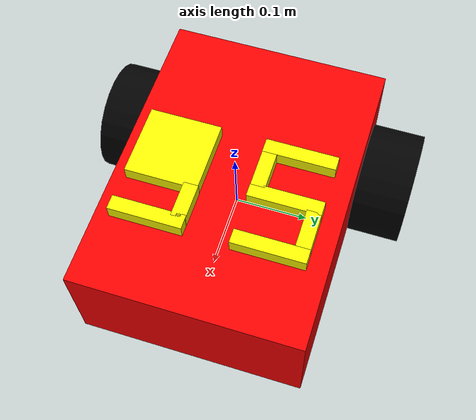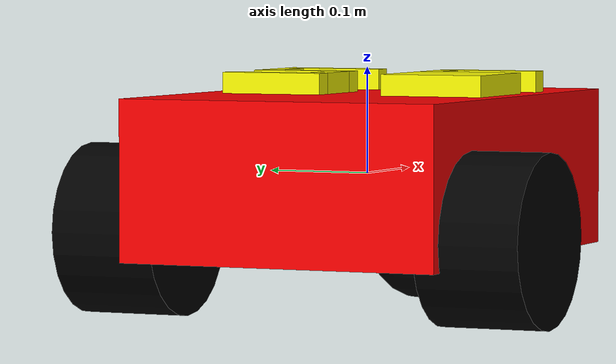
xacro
<?xml version="1.0"?>
<robot name="robot" xmlns:xacro="http://ros.org/wiki/xacro">

  <!-- Define robot constants -->
  <xacro:property name="base_width" value="0.31"/>
  <xacro:property name="base_length" value="0.42"/>
  <xacro:property name="base_height" value="0.15"/>

  <xacro:property name="wheel_radius" value="0.08"/>
  <xacro:property name="wheel_width" value="0.1"/>
  <xacro:property name="wheel_ygap" value="0.025"/>
  <xacro:property name="wheel_zoff" value="0.05"/>
  <xacro:property name="wheel_xoff" value="0.12"/>

  <xacro:property name="caster_xoff" value="0.14"/>

   <!-- Define intertial property macros  -->
  <xacro:macro name="box_inertia" params="m w h d">
    <inertial>
      <origin xyz="0 0 0" rpy="${pi/2} 0 ${pi/2}"/>
      <mass value="${m}"/>
      <inertia ixx="${(m/12) * (h*h + d*d)}" ixy="0.0" ixz="0.0" iyy="${(m/12) * (w*w + d*d)}" iyz="0.0" izz="${(m/12) * (w*w + h*h)}"/>
    </inertial>
  </xacro:macro>

  <xacro:macro name="cylinder_inertia" params="m r h">
    <inertial>
      <origin xyz="0 0 0" rpy="${pi/2} 0 0" />
      <mass value="${m}"/>
      <inertia ixx="${(m/12) * (3*r*r + h*h)}" ixy = "0" ixz = "0" iyy="${(m/12) * (3*r*r + h*h)}" iyz = "0" izz="${(m/2) * (r*r)}"/>
    </inertial>
  </xacro:macro>

  <xacro:macro name="sphere_inertia" params="m r">
    <inertial>
      <mass value="${m}"/>
      <inertia ixx="${(2/5) * m * (r*r)}" ixy="0.0" ixz="0.0" iyy="${(2/5) * m * (r*r)}" iyz="0.0" izz="${(2/5) * m * (r*r)}"/>
    </inertial>
  </xacro:macro>

  <!-- Robot Base -->
  <link name="base_link">
    <visual>
      <geometry>
        <box size="${base_length} ${base_width} ${base_height}"/>
      </geometry>
      <material name="Cyan">
        <color rgba="1.0 0 0 1.0"/>
      </material>
    </visual>

    <collision>
      <geometry>
        <box size="${base_length} ${base_width} ${base_height}"/>
      </geometry>
    </collision>

    <xacro:box_inertia m="15" w="${base_width}" d="${base_length}" h="${base_height}"/>
  </link>

  <!-- Robot Footprint -->
  <link name="base_footprint"/>

  <joint name="base_joint" type="fixed">
    <parent link="base_link"/>
    <child link="base_footprint"/>
    <origin xyz="0.0 0.0 ${-(wheel_radius+wheel_zoff)}" rpy="0 0 0"/>
  </joint>

  <!-- I AM SPEED start -->
  <!-- 9 start -->
  <!-- Rectangle on the top of base_link -->
  <link name="head_of_nine_rectangle_link">
    <visual>
      <geometry>
        <box size="0.1 0.1 0.02"/> <!-- Размеры прямоугольника (высота, ширина, длина) -->
      </geometry>
      <material name="Yellow"> <!-- Вы можете изменить цвет на свой вкус -->
        <color rgba="1.0 1.0 0 1.0"/>
      </material>
    </visual>

    <collision>
      <geometry>
        <box size="0.1 0.1 0.02"/> <!-- Размеры прямоугольника для коллизий -->
      </geometry>
    </collision>

    <!-- Определение инерции прямоугольника -->
    <inertial>
      <origin xyz="0 0 0" rpy="0 0 0"/>
      <mass value="0.1"/> <!-- Масса прямоугольника -->
      <inertia ixx="0.001" ixy="0.0" ixz="0.0" iyy="0.001" iyz="0.0" izz="0.001"/> <!-- Моменты инерции -->
    </inertial>
  </link>

  <!-- Joint to connect top_rectangle_link to base_link -->
  <joint name="head_of_nine_rectangle_joint" type="fixed">
    <parent link="base_link"/>
    <child link="head_of_nine_rectangle_link"/>
    <origin xyz="0.0 ${base_width/8 - base_width/2.5} ${base_height/2 + 0.01}" rpy="0 0 0"/> <!-- Высота прямоугольника относительно base_link -->
  </joint>

    <!-- Rectangle at a 45-degree angle to base_link. The _ of 9 -->
  <link name="angled_rectangle_link_1">
    <visual>
      <geometry>
        <box size="0.1 0.02 0.02"/> <!-- Размеры прямоугольника (высота, ширина, длина) -->
      </geometry>
      <material name="Yellow"> <!-- Вы можете изменить цвет на свой вкус -->
        <color rgba="1.0 1.0 0 1.0"/>
      </material>
    </visual>

    <collision>
      <geometry>
        <box size="0.1 0.02 0.02"/> <!-- Размеры прямоугольника для коллизий -->
      </geometry>
    </collision>

    <!-- Определение инерции прямоугольника -->
    <inertial>
      <origin xyz="0 0 0" rpy="0 0 0"/>
      <mass value="0.1"/> <!-- Масса прямоугольника -->
      <inertia ixx="0.001" ixy="0.0" ixz="0.0" iyy="0.001" iyz="0.0" izz="0.001"/> <!-- Моменты инерции -->
    </inertial>
  </link>

  <!-- Joint to connect angled_rectangle_link_1 to base_link at a 45-degree angle -->
  <joint name="angled_rectangle_joint_1" type="fixed">
    <parent link="base_link"/>
    <child link="angled_rectangle_link_1"/>
    <origin xyz="0.1 ${base_width/8 - base_width/2.5} ${base_height/2 + 0.01}" rpy="0 0 1.5708"/> <!-- Угол вращения 45 градусов (в радианах) -->
    <axis xyz="1 0 0"/> <!-- Ось вращения вдоль z-оси (вертикальная ось) -->
  </joint>

  <!-- Rectangle to base_link. The | of 9 -->
  <link name="angled_rectangle_link_2">
    <visual>
      <geometry>
        <box size="0.05 0.02 0.02"/> <!-- Размеры прямоугольника (высота, ширина, длина) -->
      </geometry>
      <material name="Yellow"> <!-- Вы можете изменить цвет на свой вкус -->
        <color rgba="1.0 1.0 0 1.0"/>
      </material>
    </visual>

    <collision>
      <geometry>
        <box size="0.05 0.02 0.02"/> <!-- Размеры прямоугольника для коллизий -->
      </geometry>
    </collision>

    <!-- Определение инерции прямоугольника -->
    <inertial>
      <origin xyz="0 0 0" rpy="0 0 0"/>
      <mass value="0.1"/> <!-- Масса прямоугольника -->
      <inertia ixx="0.001" ixy="0.0" ixz="0.0" iyy="0.001" iyz="0.0" izz="0.001"/> <!-- Моменты инерции -->
    </inertial>
  </link>

  <!-- Joint to connect angled_rectangle_link_2 to base_link -->
  <joint name="angled_rectangle_joint_2" type="fixed">
    <parent link="base_link"/>
    <child link="angled_rectangle_link_2"/>
    <origin xyz="0.07 ${base_width/8 - base_width/3.5 + 0.005} ${base_height/2 + 0.01}" rpy="0 0 0"/>
    <axis xyz="0 0 0"/> <!-- Ось вращения вдоль z-оси (вертикальная ось) -->
  </joint>
  <!-- 9 end -->

  <!-- 5 start -->

   <!-- Rectangle at a 45-degree angle to base_link. -->
  <link name="angled_rectangle_link_3">
    <visual>
      <geometry>
        <box size="0.1 0.02 0.02"/> <!-- Размеры прямоугольника (высота, ширина, длина) -->
      </geometry>
      <material name="Yellow"> <!-- Вы можете изменить цвет на свой вкус -->
        <color rgba="1.0 1.0 0 1.0"/>
      </material>
    </visual>

    <collision>
      <geometry>
        <box size="0.1 0.02 0.02"/> <!-- Размеры прямоугольника для коллизий -->
      </geometry>
    </collision>

    <!-- Определение инерции прямоугольника -->
    <inertial>
      <origin xyz="0 0 0" rpy="0 0 0"/>
      <mass value="0.1"/> <!-- Масса прямоугольника -->
      <inertia ixx="0.001" ixy="0.0" ixz="0.0" iyy="0.001" iyz="0.0" izz="0.001"/> <!-- Моменты инерции -->
    </inertial>
  </link>

  <!-- Joint to connect angled_rectangle_link_1 to base_link at a 45-degree angle -->
  <joint name="angled_rectangle_joint_3" type="fixed">
    <parent link="base_link"/>
    <child link="angled_rectangle_link_3"/>
    <origin xyz="-0.04 ${base_width/4} ${base_height/2 + 0.01}" rpy="0 0 1.5708"/>
    <axis xyz="1 0 0"/> <!-- Ось вращения вдоль z-оси (вертикальная ось) -->
  </joint>

  <!-- Rectangle at a 45-degree angle to base_link. -->
  <link name="angled_rectangle_link_4">
    <visual>
      <geometry>
        <box size="0.1 0.02 0.02"/> <!-- Размеры прямоугольника (высота, ширина, длина) -->
      </geometry>
      <material name="Yellow"> <!-- Вы можете изменить цвет на свой вкус -->
        <color rgba="1.0 1.0 0 1.0"/>
      </material>
    </visual>

    <collision>
      <geometry>
        <box size="0.1 0.02 0.02"/> <!-- Размеры прямоугольника для коллизий -->
      </geometry>
    </collision>

    <!-- Определение инерции прямоугольника -->
    <inertial>
      <origin xyz="0 0 0" rpy="0 0 0"/>
      <mass value="0.1"/> <!-- Масса прямоугольника -->
      <inertia ixx="0.001" ixy="0.0" ixz="0.0" iyy="0.001" iyz="0.0" izz="0.001"/> <!-- Моменты инерции -->
    </inertial>
  </link>

  <!-- Joint to connect angled_rectangle_link_1 to base_link at a 45-degree angle -->
  <joint name="angled_rectangle_joint_4" type="fixed">
    <parent link="base_link"/>
    <child link="angled_rectangle_link_4"/>
    <origin xyz="0.1 ${base_width/4} ${base_height/2 + 0.01}" rpy="0 0 1.5708"/>
    <axis xyz="1 0 0"/> <!-- Ось вращения вдоль z-оси (вертикальная ось) -->
  </joint>

  <!-- Rectangle at a 45-degree angle to base_link. -->
  <link name="angled_rectangle_link_5">
    <visual>
      <geometry>
        <box size="0.1 0.02 0.02"/> <!-- Размеры прямоугольника (высота, ширина, длина) -->
      </geometry>
      <material name="Yellow"> <!-- Вы можете изменить цвет на свой вкус -->
        <color rgba="1.0 1.0 0 1.0"/>
      </material>
    </visual>

    <collision>
      <geometry>
        <box size="0.1 0.02 0.02"/> <!-- Размеры прямоугольника для коллизий -->
      </geometry>
    </collision>

    <!-- Определение инерции прямоугольника -->
    <inertial>
      <origin xyz="0 0 0" rpy="0 0 0"/>
      <mass value="0.1"/> <!-- Масса прямоугольника -->
      <inertia ixx="0.001" ixy="0.0" ixz="0.0" iyy="0.001" iyz="0.0" izz="0.001"/> <!-- Моменты инерции -->
    </inertial>
  </link>

  <!-- Joint to connect angled_rectangle_link_1 to base_link at a 45-degree angle -->
  <joint name="angled_rectangle_joint_5" type="fixed">
    <parent link="base_link"/>
    <child link="angled_rectangle_link_5"/>
    <origin xyz="0.03 ${base_width/4} ${base_height/2 + 0.01}" rpy="0 0 1.5708"/>
    <axis xyz="1 0 0"/> <!-- Ось вращения вдоль z-оси (вертикальная ось) -->
  </joint>

  <!-- Rectangle to base_link. For 5 -->
  <link name="angled_rectangle_link_6">
    <visual>
      <geometry>
        <box size="0.055 0.02 0.02"/> <!-- Размеры прямоугольника (высота, ширина, длина) -->
      </geometry>
      <material name="Yellow"> <!-- Вы можете изменить цвет на свой вкус -->
        <color rgba="1.0 1.0 0 1.0"/>
      </material>
    </visual>

    <collision>
      <geometry>
        <box size="0.055 0.02 0.02"/> <!-- Размеры прямоугольника для коллизий -->
      </geometry>
    </collision>

    <!-- Определение инерции прямоугольника -->
    <inertial>
      <origin xyz="0 0 0" rpy="0 0 0"/>
      <mass value="0.1"/> <!-- Масса прямоугольника -->
      <inertia ixx="0.001" ixy="0.0" ixz="0.0" iyy="0.001" iyz="0.0" izz="0.001"/> <!-- Моменты инерции -->
    </inertial>
  </link>

  <!-- Joint to connect angled_rectangle_link_6 to base_link -->
  <joint name="angled_rectangle_joint_6" type="fixed">
    <parent link="base_link"/>
    <child link="angled_rectangle_link_6"/>
    <origin xyz="-0.005 ${base_width/8.1 - 0.0005} ${base_height/2 + 0.01}" rpy="0 0 0"/>
    <axis xyz="0 0 0"/> <!-- Ось вращения вдоль z-оси (вертикальная ось) -->
  </joint>

  <!-- Rectangle to base_link. For 5 -->
  <link name="angled_rectangle_link_7">
    <visual>
      <geometry>
        <box size="0.055 0.02 0.02"/> <!-- Размеры прямоугольника (высота, ширина, длина) -->
      </geometry>
      <material name="Yellow"> <!-- Вы можете изменить цвет на свой вкус -->
        <color rgba="1.0 1.0 0 1.0"/>
      </material>
    </visual>

    <collision>
      <geometry>
        <box size="0.055 0.02 0.02"/> <!-- Размеры прямоугольника для коллизий -->
      </geometry>
    </collision>

    <!-- Определение инерции прямоугольника -->
    <inertial>
      <origin xyz="0 0 0" rpy="0 0 0"/>
      <mass value="0.1"/> <!-- Масса прямоугольника -->
      <inertia ixx="0.001" ixy="0.0" ixz="0.0" iyy="0.001" iyz="0.0" izz="0.001"/> <!-- Моменты инерции -->
    </inertial>
  </link>

  <!-- Joint to connect angled_rectangle_link_6 to base_link -->
  <joint name="angled_rectangle_joint_7" type="fixed">
    <parent link="base_link"/>
    <child link="angled_rectangle_link_7"/>
    <origin xyz="0.065 ${base_width/2.6 - 0.0018} ${base_height/2 + 0.01}" rpy="0 0 0"/>
    <axis xyz="0 0 0"/> <!-- Ось вращения вдоль z-оси (вертикальная ось) -->
  </joint>
  <!-- 5 end -->
  <!-- I AM SPEED end-->

  <!-- Wheels -->
  <xacro:macro name="wheel" params="prefix x_reflect y_reflect">
    <link name="${prefix}_link">
      <visual>
        <origin xyz="0 0 0" rpy="${pi/2} 0 0"/>
        <geometry>
            <cylinder radius="${wheel_radius}" length="${wheel_width}"/>
        </geometry>
        <material name="Black">
          <color rgba="0 0 0 1.0"/>
        </material>
      </visual>

      <collision>
        <origin xyz="0 0 0" rpy="${pi/2} 0 0"/>
        <geometry>
          <cylinder radius="${wheel_radius}" length="${wheel_width}"/>
        </geometry>
      </collision>

      <xacro:cylinder_inertia m="0.5" r="${wheel_radius}" h="${wheel_width}"/>
    </link>

    <joint name="${prefix}_joint" type="continuous">
      <parent link="base_link"/>
      <child link="${prefix}_link"/>
      <origin xyz="${x_reflect*wheel_xoff} ${y_reflect*(base_width/2+wheel_ygap)} ${-wheel_zoff}" rpy="0 0 0"/>
      <axis xyz="0 1 0"/>
    </joint>
  </xacro:macro>

  <xacro:wheel prefix="drivewhl_l" x_reflect="-1" y_reflect="1" />
  <xacro:wheel prefix="drivewhl_r" x_reflect="-1" y_reflect="-1" />

  <!-- Caster Wheel -->
  <link name="front_caster">
    <visual>
      <geometry>
        <sphere radius="${(wheel_radius+wheel_zoff-(base_height/2))}"/>
      </geometry>
      <material name="Black">
          <color rgba="0 0 0 1.0"/>
        </material>
    </visual>

    <collision>
      <origin xyz="0 0 0" rpy="0 0 0"/>
      <geometry>
        <sphere radius="${(wheel_radius+wheel_zoff-(base_height/2))}"/>
      </geometry>
    </collision>

    <xacro:sphere_inertia m="0.5" r="${(wheel_radius+wheel_zoff-(base_height/2))}"/>

  </link>

  <joint name="caster_joint" type="fixed">
    <parent link="base_link"/>
    <child link="front_caster"/>
    <origin xyz="${caster_xoff} 0.0 ${-(base_height/2)}" rpy="0 0 0"/>
  </joint>

</robot>
